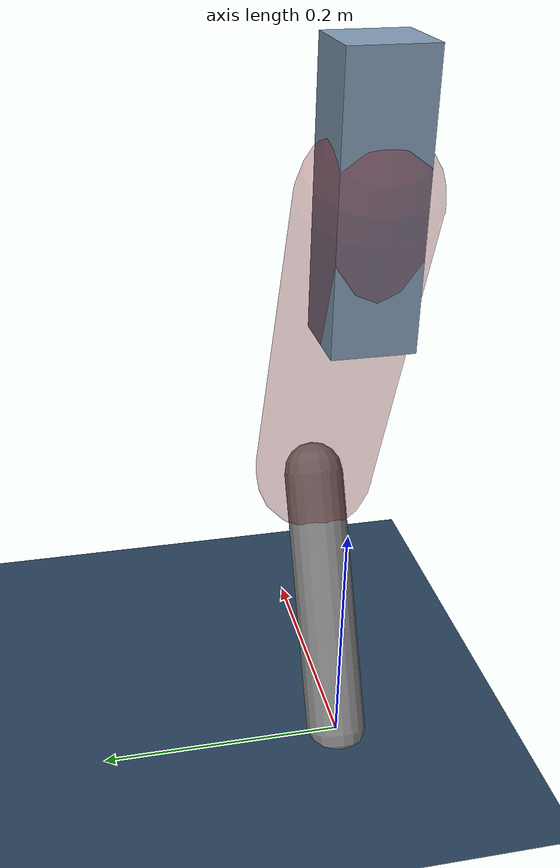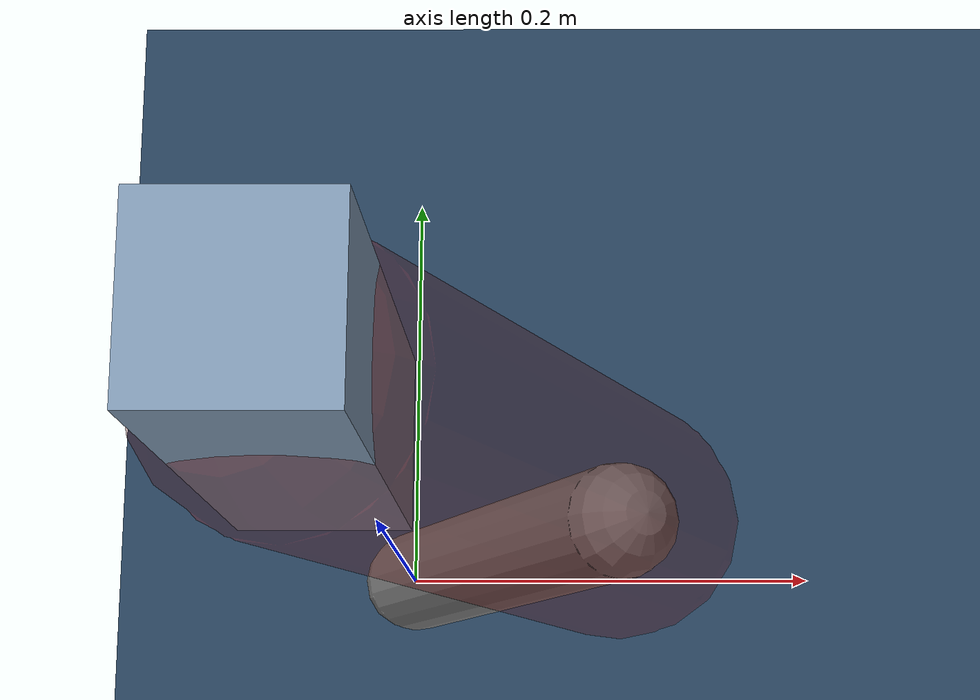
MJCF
<mujoco model="Hopper2D">
	<compiler inertiafromgeom="true" angle="radian" />
	<option timestep="0.001" integrator="implicit" cone="elliptic" solver="Newton" tolerance="1e-10" />

	<default>
		<geom contype="1" conaffinity="1" condim="3" friction="2 0.005 0.0001" solref="0.005 1" />
		<joint limited="true" damping="0.1" />
	</default>

	<asset>
		<texture name="skybox" type="skybox" builtin="gradient" rgb1=".4 .6 .8" rgb2="0 0 0" width="800" height="800" />
		<texture name="grid" type="2d" builtin="checker" rgb1=".1 .2 .3" rgb2=".2 .3 .4" width="300" height="300" mark="edge" markrgb=".2 .3 .4" />
		<material name="ground" texture="grid" texrepeat="1 1" texuniform="true" reflectance="0.1" />
		<material name="leg" rgba="0.5 0.6 0.7 1" />
	</asset>

	<worldbody>

		<geom name="floor" type="plane" size="5 5 0.25" material="ground" />

		<light directional="false" diffuse="0.8 0.8 0.8" specular="0.3 0.3 0.3" pos="0 0 2" dir="0 0 -1" />
		<light mode="targetbodycom" target="base" directional="false" diffuse="0.8 0.8 0.8" specular="0.3 0.3 0.3" pos="0 0 2" dir="0 0 -1" />

		<camera name="fixed" pos="0 -2 1" xyaxes="1 0 0 0 0 1" />
		<camera name="tracking" mode="trackcom" pos="0 -3 1" />

		<body name="root" pos="0 0 0.46698450540519243">
			<joint name="slide_x" type="slide" axis="1 0 0" range="-100 100" />
			<joint name="slide_z" type="slide" axis="0 0 1" range="0 10" />

			<body name="base" pos="0 0 0">
				<geom name="torso" type="box" size="0.03 0.03 0.1" mass="1.5739999999999998" material="leg" />

				<body name="link1" pos="0 0 0" euler="0 1.2037776228761958 0">
					<joint type="hinge" axis="0 -1 0" pos="0 0 0" name="hinge1" limited="true" range="-3.14 3.14" stiffness="0" damping="0.1" />
					<geom name="thigh" type="capsule" fromto="0 0 0 0.2875195364000166 0 0" size="0.05" rgba="0.5 0 0 0.3" mass="0.9552027482800449" />

					<body name="link2" pos="0.2875195364000166 0 0" euler="0 0.8461134335982133 0">
						<joint type="hinge" axis="0 -1 0" pos="0 0 0" name="hinge2" limited="true" range="-3.14 3.14" stiffness="0" damping="0.1" />
						<geom name="shank" type="capsule" fromto="0 0 0 0.22381178994373763 0 0" size="0.025" mass="0.4208494319549901" />

					</body>
				</body>
			</body>
		</body>
	</worldbody>

	<actuator>
		<motor name="torque1" joint="hinge1" ctrlrange="-21.863741666256306 21.863741666256306" ctrllimited="true" gear="1" />
		<motor name="torque2" joint="hinge2" ctrlrange="-53.98477684672285 53.98477684672285" ctrllimited="true" gear="1" />
	</actuator>
</mujoco>
